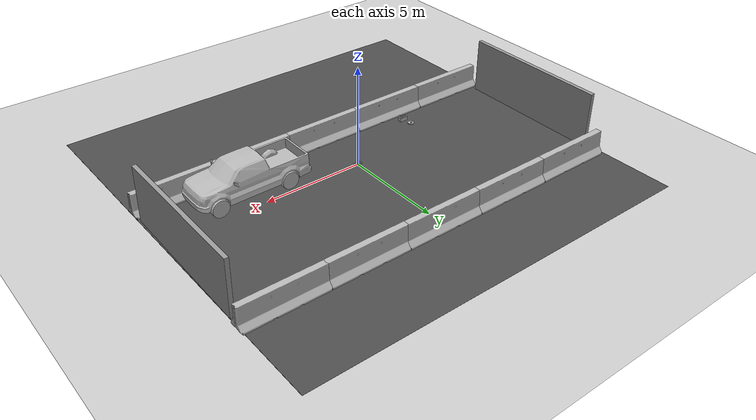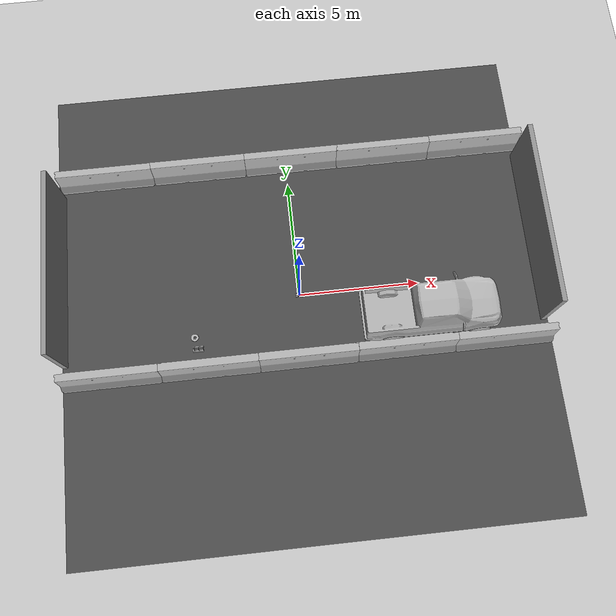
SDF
<sdf version="1.6">
 <world name="default">
  <light name="sun" type="directional">
   <pose>0 0 10 0 -0 0</pose>
   <diffuse>0.8 0.8 0.8 1</diffuse>
   <specular>0.2 0.2 0.2 1</specular>
   <attenuation>
    <range>1000</range>
    <constant>0.9</constant>
    <linear>0.01</linear>
    <quadratic>0.001</quadratic>
   </attenuation>
   <direction>-0.5 0.1 -0.9</direction>
  </light>
  <model name="ground_plane">
   <static>1</static>
   <link name="link">
    <collision name="collision">
     <geometry><plane><normal>0 0 1</normal><size>100 100</size></plane></geometry>
     <surface><friction><ode><mu>100</mu><mu2>50</mu2></ode></friction></surface>
    </collision>
    <visual name="visual">
     <transparency>1</transparency>
     <cast_shadows>0</cast_shadows>
     <geometry><plane><normal>0 0 1</normal><size>100 100</size></plane></geometry>
     <material>
      <script><uri>file://media/materials/scripts/gazebo.material</uri><name>Gazebo/Grey</name></script>
     </material>
    </visual>
   </link>
  </model>
  <gravity>0 0 -9.8</gravity>
  <magnetic_field>6e-06 2.3e-05 -4.2e-05</magnetic_field>
  <atmosphere type="adiabatic"/>
  <physics name="default_physics" default="0" type="ode">
   <max_step_size>0.001</max_step_size>
   <real_time_factor>1</real_time_factor>
   <real_time_update_rate>1000</real_time_update_rate>
  </physics>
  <scene><ambient>0.4 0.4 0.4 1</ambient><background>0.7 0.7 0.7 1</background><shadows>1</shadows></scene>
  <spherical_coordinates>
   <surface_model>EARTH_WGS84</surface_model>
   <latitude_deg>0</latitude_deg>
   <longitude_deg>0</longitude_deg>
   <elevation>0</elevation>
   <heading_deg>0</heading_deg>
  </spherical_coordinates>
  <model name="jersey_barrier">
   <static>1</static>
   <link name="link">
    <visual name="visual">
     <geometry><mesh><uri>model://jersey_barrier/meshes/jersey_barrier.dae</uri></mesh></geometry>
    </visual>
    <collision name="upright">
     <pose>0 0 0.5715 0 -0 0</pose>
     <geometry><box><size>4.06542 0.3063 1.143</size></box></geometry>
    </collision>
    <collision name="base">
     <pose>0 0 0.032258 0 -0 0</pose>
     <geometry><box><size>4.06542 0.8107 0.064516</size></box></geometry>
    </collision>
    <collision name="base2">
     <pose>0 0 0.1 0 -0 0</pose>
     <geometry><box><size>4.06542 0.65 0.1</size></box></geometry>
    </collision>
    <collision name="base3">
     <pose>0 0 0.2 0 -0 0</pose>
     <geometry><box><size>4.06542 0.5 0.1</size></box></geometry>
    </collision>
    <collision name="left-angle">
     <pose>0 -0.224 0.2401 0.9 -0 0</pose>
     <geometry><box><size>4.06542 0.5 0.064516</size></box></geometry>
    </collision>
    <collision name="right-angle">
     <pose>0 0.224 0.2401 -0.9 0 0</pose>
     <geometry><box><size>4.06542 0.5 0.064516</size></box></geometry>
    </collision>
   </link>
   <pose>-7.75098 5.99367 0 0 -0 0</pose>
  </model>
  <model name="jersey_barrier_0">
   <static>1</static>
   <link name="link">
    <visual name="visual">
     <geometry><mesh><uri>model://jersey_barrier/meshes/jersey_barrier.dae</uri></mesh></geometry>
    </visual>
    <collision name="upright">
     <pose>0 0 0.5715 0 -0 0</pose>
     <geometry><box><size>4.06542 0.3063 1.143</size></box></geometry>
    </collision>
    <collision name="base">
     <pose>0 0 0.032258 0 -0 0</pose>
     <geometry><box><size>4.06542 0.8107 0.064516</size></box></geometry>
    </collision>
    <collision name="base2">
     <pose>0 0 0.1 0 -0 0</pose>
     <geometry><box><size>4.06542 0.65 0.1</size></box></geometry>
    </collision>
    <collision name="base3">
     <pose>0 0 0.2 0 -0 0</pose>
     <geometry><box><size>4.06542 0.5 0.1</size></box></geometry>
    </collision>
    <collision name="left-angle">
     <pose>0 -0.224 0.2401 0.9 -0 0</pose>
     <geometry><box><size>4.06542 0.5 0.064516</size></box></geometry>
    </collision>
    <collision name="right-angle">
     <pose>0 0.224 0.2401 -0.9 0 0</pose>
     <geometry><box><size>4.06542 0.5 0.064516</size></box></geometry>
    </collision>
   </link>
   <pose>-3.75438 6.00591 0 0 -0 0</pose>
  </model>
  <model name="jersey_barrier_1">
   <static>1</static>
   <link name="link">
    <visual name="visual">
     <geometry><mesh><uri>model://jersey_barrier/meshes/jersey_barrier.dae</uri></mesh></geometry>
    </visual>
    <collision name="upright">
     <pose>0 0 0.5715 0 -0 0</pose>
     <geometry><box><size>4.06542 0.3063 1.143</size></box></geometry>
    </collision>
    <collision name="base">
     <pose>0 0 0.032258 0 -0 0</pose>
     <geometry><box><size>4.06542 0.8107 0.064516</size></box></geometry>
    </collision>
    <collision name="base2">
     <pose>0 0 0.1 0 -0 0</pose>
     <geometry><box><size>4.06542 0.65 0.1</size></box></geometry>
    </collision>
    <collision name="base3">
     <pose>0 0 0.2 0 -0 0</pose>
     <geometry><box><size>4.06542 0.5 0.1</size></box></geometry>
    </collision>
    <collision name="left-angle">
     <pose>0 -0.224 0.2401 0.9 -0 0</pose>
     <geometry><box><size>4.06542 0.5 0.064516</size></box></geometry>
    </collision>
    <collision name="right-angle">
     <pose>0 0.224 0.2401 -0.9 0 0</pose>
     <geometry><box><size>4.06542 0.5 0.064516</size></box></geometry>
    </collision>
   </link>
   <pose>0.248575 6.01011 0 0 -0 0</pose>
  </model>
  <model name="jersey_barrier_2">
   <static>1</static>
   <link name="link">
    <visual name="visual">
     <geometry><mesh><uri>model://jersey_barrier/meshes/jersey_barrier.dae</uri></mesh></geometry>
    </visual>
    <collision name="upright">
     <pose>0 0 0.5715 0 -0 0</pose>
     <geometry><box><size>4.06542 0.3063 1.143</size></box></geometry>
    </collision>
    <collision name="base">
     <pose>0 0 0.032258 0 -0 0</pose>
     <geometry><box><size>4.06542 0.8107 0.064516</size></box></geometry>
    </collision>
    <collision name="base2">
     <pose>0 0 0.1 0 -0 0</pose>
     <geometry><box><size>4.06542 0.65 0.1</size></box></geometry>
    </collision>
    <collision name="base3">
     <pose>0 0 0.2 0 -0 0</pose>
     <geometry><box><size>4.06542 0.5 0.1</size></box></geometry>
    </collision>
    <collision name="left-angle">
     <pose>0 -0.224 0.2401 0.9 -0 0</pose>
     <geometry><box><size>4.06542 0.5 0.064516</size></box></geometry>
    </collision>
    <collision name="right-angle">
     <pose>0 0.224 0.2401 -0.9 0 0</pose>
     <geometry><box><size>4.06542 0.5 0.064516</size></box></geometry>
    </collision>
   </link>
   <pose>4.20715 6.00684 0 0 -0 0</pose>
  </model>
  <model name="jersey_barrier_3">
   <static>1</static>
   <link name="link">
    <visual name="visual">
     <geometry><mesh><uri>model://jersey_barrier/meshes/jersey_barrier.dae</uri></mesh></geometry>
    </visual>
    <collision name="upright">
     <pose>0 0 0.5715 0 -0 0</pose>
     <geometry><box><size>4.06542 0.3063 1.143</size></box></geometry>
    </collision>
    <collision name="base">
     <pose>0 0 0.032258 0 -0 0</pose>
     <geometry><box><size>4.06542 0.8107 0.064516</size></box></geometry>
    </collision>
    <collision name="base2">
     <pose>0 0 0.1 0 -0 0</pose>
     <geometry><box><size>4.06542 0.65 0.1</size></box></geometry>
    </collision>
    <collision name="base3">
     <pose>0 0 0.2 0 -0 0</pose>
     <geometry><box><size>4.06542 0.5 0.1</size></box></geometry>
    </collision>
    <collision name="left-angle">
     <pose>0 -0.224 0.2401 0.9 -0 0</pose>
     <geometry><box><size>4.06542 0.5 0.064516</size></box></geometry>
    </collision>
    <collision name="right-angle">
     <pose>0 0.224 0.2401 -0.9 0 0</pose>
     <geometry><box><size>4.06542 0.5 0.064516</size></box></geometry>
    </collision>
   </link>
   <pose>8.19136 6.01867 0 0 -0 0</pose>
  </model>
  <model name="jersey_barrier_4">
   <static>1</static>
   <link name="link">
    <visual name="visual">
     <geometry><mesh><uri>model://jersey_barrier/meshes/jersey_barrier.dae</uri></mesh></geometry>
    </visual>
    <collision name="upright">
     <pose>0 0 0.5715 0 -0 0</pose>
     <geometry><box><size>4.06542 0.3063 1.143</size></box></geometry>
    </collision>
    <collision name="base">
     <pose>0 0 0.032258 0 -0 0</pose>
     <geometry><box><size>4.06542 0.8107 0.064516</size></box></geometry>
    </collision>
    <collision name="base2">
     <pose>0 0 0.1 0 -0 0</pose>
     <geometry><box><size>4.06542 0.65 0.1</size></box></geometry>
    </collision>
    <collision name="base3">
     <pose>0 0 0.2 0 -0 0</pose>
     <geometry><box><size>4.06542 0.5 0.1</size></box></geometry>
    </collision>
    <collision name="left-angle">
     <pose>0 -0.224 0.2401 0.9 -0 0</pose>
     <geometry><box><size>4.06542 0.5 0.064516</size></box></geometry>
    </collision>
    <collision name="right-angle">
     <pose>0 0.224 0.2401 -0.9 0 0</pose>
     <geometry><box><size>4.06542 0.5 0.064516</size></box></geometry>
    </collision>
   </link>
   <pose>8.0964 -2.68116 0 0 -0 0</pose>
  </model>
  <model name="jersey_barrier_5">
   <static>1</static>
   <link name="link">
    <visual name="visual">
     <geometry><mesh><uri>model://jersey_barrier/meshes/jersey_barrier.dae</uri></mesh></geometry>
    </visual>
    <collision name="upright">
     <pose>0 0 0.5715 0 -0 0</pose>
     <geometry><box><size>4.06542 0.3063 1.143</size></box></geometry>
    </collision>
    <collision name="base">
     <pose>0 0 0.032258 0 -0 0</pose>
     <geometry><box><size>4.06542 0.8107 0.064516</size></box></geometry>
    </collision>
    <collision name="base2">
     <pose>0 0 0.1 0 -0 0</pose>
     <geometry><box><size>4.06542 0.65 0.1</size></box></geometry>
    </collision>
    <collision name="base3">
     <pose>0 0 0.2 0 -0 0</pose>
     <geometry><box><size>4.06542 0.5 0.1</size></box></geometry>
    </collision>
    <collision name="left-angle">
     <pose>0 -0.224 0.2401 0.9 -0 0</pose>
     <geometry><box><size>4.06542 0.5 0.064516</size></box></geometry>
    </collision>
    <collision name="right-angle">
     <pose>0 0.224 0.2401 -0.9 0 0</pose>
     <geometry><box><size>4.06542 0.5 0.064516</size></box></geometry>
    </collision>
   </link>
   <pose>4.09361 -2.67385 0 0 -0 0</pose>
  </model>
  <model name="jersey_barrier_6">
   <static>1</static>
   <link name="link">
    <visual name="visual">
     <geometry><mesh><uri>model://jersey_barrier/meshes/jersey_barrier.dae</uri></mesh></geometry>
    </visual>
    <collision name="upright">
     <pose>0 0 0.5715 0 -0 0</pose>
     <geometry><box><size>4.06542 0.3063 1.143</size></box></geometry>
    </collision>
    <collision name="base">
     <pose>0 0 0.032258 0 -0 0</pose>
     <geometry><box><size>4.06542 0.8107 0.064516</size></box></geometry>
    </collision>
    <collision name="base2">
     <pose>0 0 0.1 0 -0 0</pose>
     <geometry><box><size>4.06542 0.65 0.1</size></box></geometry>
    </collision>
    <collision name="base3">
     <pose>0 0 0.2 0 -0 0</pose>
     <geometry><box><size>4.06542 0.5 0.1</size></box></geometry>
    </collision>
    <collision name="left-angle">
     <pose>0 -0.224 0.2401 0.9 -0 0</pose>
     <geometry><box><size>4.06542 0.5 0.064516</size></box></geometry>
    </collision>
    <collision name="right-angle">
     <pose>0 0.224 0.2401 -0.9 0 0</pose>
     <geometry><box><size>4.06542 0.5 0.064516</size></box></geometry>
    </collision>
   </link>
   <pose>0.086719 -2.68949 0 0 -0 0</pose>
  </model>
  <model name="jersey_barrier_7">
   <static>1</static>
   <link name="link">
    <visual name="visual">
     <geometry><mesh><uri>model://jersey_barrier/meshes/jersey_barrier.dae</uri></mesh></geometry>
    </visual>
    <collision name="upright">
     <pose>0 0 0.5715 0 -0 0</pose>
     <geometry><box><size>4.06542 0.3063 1.143</size></box></geometry>
    </collision>
    <collision name="base">
     <pose>0 0 0.032258 0 -0 0</pose>
     <geometry><box><size>4.06542 0.8107 0.064516</size></box></geometry>
    </collision>
    <collision name="base2">
     <pose>0 0 0.1 0 -0 0</pose>
     <geometry><box><size>4.06542 0.65 0.1</size></box></geometry>
    </collision>
    <collision name="base3">
     <pose>0 0 0.2 0 -0 0</pose>
     <geometry><box><size>4.06542 0.5 0.1</size></box></geometry>
    </collision>
    <collision name="left-angle">
     <pose>0 -0.224 0.2401 0.9 -0 0</pose>
     <geometry><box><size>4.06542 0.5 0.064516</size></box></geometry>
    </collision>
    <collision name="right-angle">
     <pose>0 0.224 0.2401 -0.9 0 0</pose>
     <geometry><box><size>4.06542 0.5 0.064516</size></box></geometry>
    </collision>
   </link>
   <pose>-3.89688 -2.69474 0 0 -0 0</pose>
  </model>
  <model name="jersey_barrier_8">
   <static>1</static>
   <link name="link">
    <visual name="visual">
     <geometry><mesh><uri>model://jersey_barrier/meshes/jersey_barrier.dae</uri></mesh></geometry>
    </visual>
    <collision name="upright">
     <pose>0 0 0.5715 0 -0 0</pose>
     <geometry><box><size>4.06542 0.3063 1.143</size></box></geometry>
    </collision>
    <collision name="base">
     <pose>0 0 0.032258 0 -0 0</pose>
     <geometry><box><size>4.06542 0.8107 0.064516</size></box></geometry>
    </collision>
    <collision name="base2">
     <pose>0 0 0.1 0 -0 0</pose>
     <geometry><box><size>4.06542 0.65 0.1</size></box></geometry>
    </collision>
    <collision name="base3">
     <pose>0 0 0.2 0 -0 0</pose>
     <geometry><box><size>4.06542 0.5 0.1</size></box></geometry>
    </collision>
    <collision name="left-angle">
     <pose>0 -0.224 0.2401 0.9 -0 0</pose>
     <geometry><box><size>4.06542 0.5 0.064516</size></box></geometry>
    </collision>
    <collision name="right-angle">
     <pose>0 0.224 0.2401 -0.9 0 0</pose>
     <geometry><box><size>4.06542 0.5 0.064516</size></box></geometry>
    </collision>
   </link>
   <pose>-7.89285 -2.70504 0 0 -0 0</pose>
  </model>
  <model name="cinder_block">
   <link name="link">
    <inertial>
     <pose>0 0 0.1016 0 -0 0</pose>
     <mass>5</mass>
     <inertia>
      <ixx>0.028705</ixx>
      <ixy>0</ixy>
      <iyy>0.073708</iyy>
      <ixz>0</ixz>
      <iyz>0</iyz>
      <izz>0.06908</izz>
     </inertia>
    </inertial>
    <visual name="visual">
     <geometry><mesh><uri>model://cinder_block/meshes/cinder_block.dae</uri></mesh></geometry>
    </visual>
    <collision name="left">
     <pose>0 -0.08465 0.1016 0 -0 0</pose>
     <geometry><box><size>0.43495 0.0339 0.2032</size></box></geometry>
     <surface>
      <contact><ode><max_vel>0.1</max_vel><min_depth>0.001</min_depth></ode></contact>
      <friction><ode><mu>1</mu><mu2>1</mu2></ode></friction>
     </surface>
    </collision>
    <collision name="right">
     <pose>0 0.08465 0.1016 0 -0 0</pose>
     <geometry><box><size>0.43495 0.0339 0.2032</size></box></geometry>
     <surface>
      <contact><ode><max_vel>0.1</max_vel><min_depth>0.001</min_depth></ode></contact>
      <friction><ode><mu>1</mu><mu2>1</mu2></ode></friction>
     </surface>
    </collision>
    <collision name="front">
     <pose>0.18625 0 0.1016 0 -0 0</pose>
     <geometry><box><size>0.0339 0.1354 0.203</size></box></geometry>
     <surface>
      <contact><ode><max_vel>0.1</max_vel><min_depth>0.001</min_depth></ode></contact>
      <friction><ode><mu>1</mu><mu2>1</mu2></ode></friction>
     </surface>
    </collision>
    <collision name="middle">
     <pose>0 0 0.1016 0 -0 0</pose>
     <geometry><box><size>0.0339 0.1354 0.203</size></box></geometry>
     <surface>
      <contact><ode><max_vel>0.1</max_vel><min_depth>0.001</min_depth></ode></contact>
      <friction><ode><mu>1</mu><mu2>1</mu2></ode></friction>
     </surface>
    </collision>
    <collision name="back">
     <pose>-0.18625 0 0.1016 0 -0 0</pose>
     <geometry><box><size>0.0339 0.1354 0.203</size></box></geometry>
     <surface>
      <contact><ode><max_vel>0.1</max_vel><min_depth>0.001</min_depth></ode></contact>
      <friction><ode><mu>1</mu><mu2>1</mu2></ode></friction>
     </surface>
    </collision>
   </link>
   <pose>-4.35231 -1.88557 -0.000338 -2e-06 -0.001352 -4e-06</pose>
  </model>
  <model name="disk_part">
   <link name="link">
    <inertial>
     <pose>0 0 0.02895 0 -0 0</pose>
     <mass>0.5</mass>
     <inertia>
      <ixx>0.00321218</ixx>
      <ixy>0</ixy>
      <ixz>0</ixz>
      <iyy>0.00321218</iyy>
      <iyz>0</iyz>
      <izz>0.00614499</izz>
     </inertia>
    </inertial>
    <collision name="collision">
     <pose>0 0 0.02895 0 -0 0</pose>
     <geometry><cylinder><length>0.0579</length><radius>0.15678</radius></cylinder></geometry>
    </collision>
    <visual name="visual">
     <geometry><mesh><uri>model://disk_part/meshes/disk.dae</uri></mesh></geometry>
     <material>
      <script>
       <uri>model://arm_part/materials/scripts</uri>
       <uri>model://arm_part/materials/textures</uri>
       <name>ArmPart/Diffuse</name>
      </script>
     </material>
    </visual>
   </link>
   <pose>-4.47199 -1.38375 -3e-06 -2.1e-05 -2.1e-05 -2.2e-05</pose>
  </model>
  <model name="pickup">
   <static>1</static>
   <link name="link">
    <collision name="collision">
     <pose>0 0 0 0 0 -1.5708</pose>
     <geometry><mesh><uri>model://pickup/meshes/pickup.dae</uri></mesh></geometry>
    </collision>
    <visual name="visual">
     <pose>0 0 0 0 0 -1.5708</pose>
     <geometry><mesh><uri>model://pickup/meshes/pickup.dae</uri></mesh></geometry>
    </visual>
   </link>
   <pose>5.35397 -1.30436 0 0 -0 0</pose>
  </model>
  <model name="grey_wall">
   <static>1</static>
   <link name="link">
    <pose>0 0 1.4 0 -0 0</pose>
    <collision name="collision"><geometry><box><size>7.5 0.2 2.8</size></box></geometry></collision>
    <visual name="visual">
     <cast_shadows>0</cast_shadows>
     <geometry><box><size>7.5 0.2 2.8</size></box></geometry>
     <material>
      <script>
       <uri>model://grey_wall/materials/scripts</uri>
       <uri>model://grey_wall/materials/textures</uri>
       <name>vrc/grey_wall</name>
      </script>
     </material>
    </visual>
   </link>
   <pose>9.95585 1.645 0 0 0 -1.58125</pose>
  </model>
  <model name="grey_wall_clone">
   <static>1</static>
   <link name="link">
    <pose>0 0 1.4 0 -0 0</pose>
    <collision name="collision"><geometry><box><size>7.5 0.2 2.8</size></box></geometry></collision>
    <visual name="visual">
     <cast_shadows>0</cast_shadows>
     <geometry><box><size>7.5 0.2 2.8</size></box></geometry>
     <material>
      <script>
       <uri>model://grey_wall/materials/scripts</uri>
       <uri>model://grey_wall/materials/textures</uri>
       <name>vrc/grey_wall</name>
      </script>
     </material>
    </visual>
   </link>
   <pose>-9.74437 1.64538 0 0 0 -1.58125</pose>
  </model>
  <model name="udacity_bot">
   <link name="robot_footprint">
    <inertial>
     <pose>0.00098 0 0.000654 0 -0 0</pose>
     <mass>15.3</mass>
     <inertia>
      <ixx>0.100496</ixx>
      <ixy>0</ixy>
      <ixz>9.80392e-06</ixz>
      <iyy>0.103857</iyy>
      <iyz>0</iyz>
      <izz>0.103363</izz>
     </inertia>
    </inertial>
    <collision name="robot_footprint_fixed_joint_lump__collision_collision">
     <geometry><box><size>0.3 0.1 0.05</size></box></geometry>
    </collision>
    <collision name="robot_footprint_fixed_joint_lump__collision_collision_1">
     <pose>0.15 0 0 0 -0 0</pose>
     <geometry><box><size>0.025 0.025 0.025</size></box></geometry>
    </collision>
    <collision name="robot_footprint_fixed_joint_lump__collision_collision_2">
     <pose>0.075 0 0.05 0 -0 0</pose>
     <geometry><box><size>0.05 0.05 0.05</size></box></geometry>
    </collision>
    <collision name="robot_footprint_fixed_joint_lump__collision_collision_3">
     <pose>-0.075 0 0.05 0 -0 3.1414</pose>
     <geometry><box><size>0.05 0.05 0.05</size></box></geometry>
    </collision>
    <visual name="robot_footprint_fixed_joint_lump__chassis_visual_visual">
     <geometry><box><size>0.3 0.1 0.05</size></box></geometry>
    </visual>
    <visual name="robot_footprint_fixed_joint_lump__chassis_visual_visual_1">
     <pose>0.15 0 0 0 -0 0</pose>
     <geometry><box><size>0.025 0.025 0.025</size></box></geometry>
    </visual>
    <visual name="robot_footprint_fixed_joint_lump__chassis_visual_visual_2">
     <pose>0.075 0 0.05 0 -0 0</pose>
     <geometry>
      <mesh><scale>1 1 1</scale><uri>/home/robond/ws_moveit/src/slam_project/meshes/hokuyo.dae</uri></mesh>
     </geometry>
    </visual>
    <visual name="robot_footprint_fixed_joint_lump__chassis_visual_visual_3">
     <pose>-0.075 0 0.05 0 -0 3.1414</pose>
     <geometry>
      <mesh><scale>1 1 1</scale><uri>/home/robond/ws_moveit/src/slam_project/meshes/hokuyo.dae</uri></mesh>
     </geometry>
    </visual>
    <sensor name="camera1" type="depth">
     <always_on>1</always_on>
     <update_rate>20</update_rate>
     <visualize>1</visualize>
     <camera name="__default__">
      <horizontal_fov>1.047</horizontal_fov>
      <image><width>640</width><height>480</height><format>R8G8B8</format></image>
      <depth_camera><output>depths</output></depth_camera>
      <clip><near>0.1</near><far>20</far></clip>
     </camera>
     <plugin name="camera_controller" filename="libgazebo_ros_openni_kinect.so">
      <alwaysOn>true</alwaysOn>
      <updateRate>40</updateRate>
      <cameraName>camera</cameraName>
      <frameName>camera_rgbd_frame</frameName>
      <imageTopicName>rgb/image_raw</imageTopicName>
      <depthImageTopicName>depth/image_raw</depthImageTopicName>
      <pointCloudTopicName>depth/points</pointCloudTopicName>
      <cameraInfoTopicName>rgb/camera_info</cameraInfoTopicName>
      <depthImageCameraInfoTopicName>depth/camera_info</depthImageCameraInfoTopicName>
      <pointCloudCutoff>0.4</pointCloudCutoff>
      <hackBaseline>0.07</hackBaseline>
      <distortionK1>0.0</distortionK1>
      <distortionK2>0.0</distortionK2>
      <distortionK3>0.0</distortionK3>
      <distortionT1>0.0</distortionT1>
      <distortionT2>0.0</distortionT2>
      <CxPrime>0.0</CxPrime>
      <Cx>0.0</Cx>
      <Cy>0.0</Cy>
      <focalLength>0.0</focalLength>
      <robotNamespace>/</robotNamespace>
     </plugin>
     <pose>0.15 0 0 0 -0 0</pose>
    </sensor>
    <sensor name="head_hokuyo_sensor" type="ray">
     <visualize>0</visualize>
     <update_rate>20</update_rate>
     <ray>
      <scan>
       <horizontal>
        <samples>720</samples>
        <resolution>1</resolution>
        <min_angle>-1.5708</min_angle>
        <max_angle>1.5708</max_angle>
       </horizontal>
       <vertical><samples>1</samples><min_angle>0</min_angle><max_angle>0</max_angle></vertical>
      </scan>
      <range><min>0.1</min><max>30</max><resolution>0.01</resolution></range>
      <noise><type>gaussian</type><mean>0</mean><stddev>0.01</stddev></noise>
     </ray>
     <plugin name="gazebo_ros_head_hokuyo_controller" filename="libgazebo_ros_laser.so">
      <topicName>/udacity_bot/laser/scan</topicName>
      <frameName>hokuyo</frameName>
      <robotNamespace>/</robotNamespace>
     </plugin>
     <pose>0.075 0 0.05 0 -0 0</pose>
    </sensor>
    <sensor name="back_hokuyo_sensor" type="ray">
     <visualize>0</visualize>
     <update_rate>40</update_rate>
     <ray>
      <scan>
       <horizontal>
        <samples>2000</samples>
        <resolution>1</resolution>
        <min_angle>-3.14</min_angle>
        <max_angle>3.14</max_angle>
       </horizontal>
       <vertical><samples>1</samples><min_angle>0</min_angle><max_angle>0</max_angle></vertical>
      </scan>
      <range><min>0.5</min><max>40</max><resolution>0.01</resolution></range>
      <noise><type>gaussian</type><mean>0</mean><stddev>0.01</stddev></noise>
     </ray>
     <plugin name="gazebo_ros_head_hokuyo_controller" filename="libgazebo_ros_laser.so">
      <topicName>/udacity_bot/laser/scan2</topicName>
      <frameName>hokuyo2</frameName>
      <robotNamespace>/</robotNamespace>
     </plugin>
     <pose>-0.075 0 0.05 0 -0 0</pose>
    </sensor>
   </link>
   <link name="left_wheel3">
    <pose>0.125 0.075 0 0 -0 0</pose>
    <inertial>
     <pose>0 0 0 -0 1.5707 1.5707</pose>
     <mass>5</mass>
     <inertia><ixx>0.1</ixx><ixy>0</ixy><ixz>0</ixz><iyy>0.1</iyy><iyz>0</iyz><izz>0.1</izz></inertia>
    </inertial>
    <collision name="left_wheel3_fixed_joint_lump__collision_collision">
     <pose>0 0 0 -0 1.5707 1.5707</pose>
     <geometry><cylinder><length>0.025</length><radius>0.049</radius></cylinder></geometry>
    </collision>
    <visual name="left_wheel3_fixed_joint_lump__chassis_visual_visual">
     <pose>0 0 0 -0 1.5707 1.5707</pose>
     <geometry><cylinder><length>0.025</length><radius>0.05</radius></cylinder></geometry>
    </visual>
   </link>
   <joint name="L3_wheel_hinge" type="revolute">
    <child>left_wheel3</child>
    <parent>robot_footprint</parent>
    <axis>
     <xyz>0 1 0</xyz>
     <limit><lower>-1e+16</lower><upper>1e+16</upper></limit>
     <dynamics>
      <damping>0</damping>
      <friction>0</friction>
      <spring_reference>0</spring_reference>
      <spring_stiffness>0</spring_stiffness>
     </dynamics>
     <use_parent_model_frame>1</use_parent_model_frame>
    </axis>
   </joint>
   <link name="left_wheel2">
    <pose>-0.125 0.075 0 0 -0 0</pose>
    <inertial>
     <pose>0 0 0 -0 1.5707 1.5707</pose>
     <mass>5</mass>
     <inertia><ixx>0.1</ixx><ixy>0</ixy><ixz>0</ixz><iyy>0.1</iyy><iyz>0</iyz><izz>0.1</izz></inertia>
    </inertial>
    <collision name="left_wheel2_fixed_joint_lump__collision_collision">
     <pose>0 0 0 -0 1.5707 1.5707</pose>
     <geometry><cylinder><length>0.025</length><radius>0.049</radius></cylinder></geometry>
    </collision>
    <visual name="left_wheel2_fixed_joint_lump__chassis_visual_visual">
     <pose>0 0 0 -0 1.5707 1.5707</pose>
     <geometry><cylinder><length>0.025</length><radius>0.05</radius></cylinder></geometry>
    </visual>
   </link>
   <joint name="L_wheel_hinge" type="revolute">
    <child>left_wheel2</child>
    <parent>robot_footprint</parent>
    <axis>
     <xyz>0 1 0</xyz>
     <limit><lower>-1e+16</lower><upper>1e+16</upper></limit>
     <dynamics>
      <damping>0</damping>
      <friction>0</friction>
      <spring_reference>0</spring_reference>
      <spring_stiffness>0</spring_stiffness>
     </dynamics>
     <use_parent_model_frame>1</use_parent_model_frame>
    </axis>
   </joint>
   <link name="right_wheel3">
    <pose>0.125 -0.075 0 0 -0 0</pose>
    <inertial>
     <pose>0 0 0 -0 1.5707 1.5707</pose>
     <mass>5</mass>
     <inertia><ixx>0.1</ixx><ixy>0</ixy><ixz>0</ixz><iyy>0.1</iyy><iyz>0</iyz><izz>0.1</izz></inertia>
    </inertial>
    <collision name="right_wheel3_fixed_joint_lump__collision_collision">
     <pose>0 0 0 -0 1.5707 1.5707</pose>
     <geometry><cylinder><length>0.025</length><radius>0.049</radius></cylinder></geometry>
    </collision>
    <visual name="right_wheel3_fixed_joint_lump__chassis_visual_visual">
     <pose>0 0 0 -0 1.5707 1.5707</pose>
     <geometry><cylinder><length>0.025</length><radius>0.05</radius></cylinder></geometry>
    </visual>
   </link>
   <joint name="R3_wheel_hinge" type="revolute">
    <child>right_wheel3</child>
    <parent>robot_footprint</parent>
    <axis>
     <xyz>0 1 0</xyz>
     <limit><lower>-1e+16</lower><upper>1e+16</upper></limit>
     <dynamics>
      <damping>0</damping>
      <friction>0</friction>
      <spring_reference>0</spring_reference>
      <spring_stiffness>0</spring_stiffness>
     </dynamics>
     <use_parent_model_frame>1</use_parent_model_frame>
    </axis>
   </joint>
   <link name="right_wheel2">
    <pose>-0.125 -0.075 0 0 -0 0</pose>
    <inertial>
     <pose>0 0 0 -0 1.5707 1.5707</pose>
     <mass>5</mass>
     <inertia><ixx>0.1</ixx><ixy>0</ixy><ixz>0</ixz><iyy>0.1</iyy><iyz>0</iyz><izz>0.1</izz></inertia>
    </inertial>
    <collision name="right_wheel2_fixed_joint_lump__collision_collision">
     <pose>0 0 0 -0 1.5707 1.5707</pose>
     <geometry><cylinder><length>0.025</length><radius>0.049</radius></cylinder></geometry>
    </collision>
    <visual name="right_wheel2_fixed_joint_lump__chassis_visual_visual">
     <pose>0 0 0 -0 1.5707 1.5707</pose>
     <geometry><cylinder><length>0.025</length><radius>0.05</radius></cylinder></geometry>
    </visual>
   </link>
   <joint name="R_wheel_hinge" type="revolute">
    <child>right_wheel2</child>
    <parent>robot_footprint</parent>
    <axis>
     <xyz>0 1 0</xyz>
     <limit><lower>-1e+16</lower><upper>1e+16</upper></limit>
     <dynamics>
      <damping>0</damping>
      <friction>0</friction>
      <spring_reference>0</spring_reference>
      <spring_stiffness>0</spring_stiffness>
     </dynamics>
     <use_parent_model_frame>1</use_parent_model_frame>
    </axis>
   </joint>
   <link name="left_wheel">
    <pose>0 0.075 0 0 -0 0</pose>
    <inertial>
     <pose>0 0 0 -0 1.5707 1.5707</pose>
     <mass>5</mass>
     <inertia><ixx>0.1</ixx><ixy>0</ixy><ixz>0</ixz><iyy>0.1</iyy><iyz>0</iyz><izz>0.1</izz></inertia>
    </inertial>
    <collision name="left_wheel_fixed_joint_lump__collision_collision">
     <pose>0 0 0 -0 1.5707 1.5707</pose>
     <geometry><cylinder><length>0.025</length><radius>0.05</radius></cylinder></geometry>
    </collision>
    <visual name="left_wheel_fixed_joint_lump__chassis_visual_visual">
     <pose>0 0 0 -0 1.5707 1.5707</pose>
     <geometry><cylinder><length>0.025</length><radius>0.05</radius></cylinder></geometry>
    </visual>
   </link>
   <joint name="left_wheel_hinge" type="revolute">
    <child>left_wheel</child>
    <parent>robot_footprint</parent>
    <axis>
     <xyz>0 1 0</xyz>
     <limit><lower>-1e+16</lower><upper>1e+16</upper></limit>
     <dynamics>
      <damping>1</damping>
      <friction>1</friction>
      <spring_reference>0</spring_reference>
      <spring_stiffness>0</spring_stiffness>
     </dynamics>
     <use_parent_model_frame>1</use_parent_model_frame>
    </axis>
   </joint>
   <link name="right_wheel">
    <pose>0 -0.075 0 0 -0 0</pose>
    <inertial>
     <pose>0 0 0 -0 1.5707 1.5707</pose>
     <mass>5</mass>
     <inertia><ixx>0.1</ixx><ixy>0</ixy><ixz>0</ixz><iyy>0.1</iyy><iyz>0</iyz><izz>0.1</izz></inertia>
    </inertial>
    <collision name="right_wheel_fixed_joint_lump__collision_collision">
     <pose>0 0 0 -0 1.5707 1.5707</pose>
     <geometry><cylinder><length>0.025</length><radius>0.05</radius></cylinder></geometry>
    </collision>
    <visual name="right_wheel_fixed_joint_lump__chassis_visual_visual">
     <pose>0 0 0 -0 1.5707 1.5707</pose>
     <geometry><cylinder><length>0.025</length><radius>0.05</radius></cylinder></geometry>
    </visual>
   </link>
   <joint name="right_wheel_hinge" type="revolute">
    <child>right_wheel</child>
    <parent>robot_footprint</parent>
    <axis>
     <xyz>0 1 0</xyz>
     <limit><lower>-1e+16</lower><upper>1e+16</upper></limit>
     <dynamics>
      <damping>1</damping>
      <friction>1</friction>
      <spring_reference>0</spring_reference>
      <spring_stiffness>0</spring_stiffness>
     </dynamics>
     <use_parent_model_frame>1</use_parent_model_frame>
    </axis>
   </joint>
   <static>0</static>
   <plugin name="differential_drive_controller" filename="libgazebo_ros_diff_drive.so">
    <legacyMode>false</legacyMode>
    <alwaysOn>true</alwaysOn>
    <updateRate>10</updateRate>
    <leftJoint>left_wheel_hinge</leftJoint>
    <rightJoint>right_wheel_hinge</rightJoint>
    <wheelSeparation>0.2</wheelSeparation>
    <wheelDiameter>0.1</wheelDiameter>
    <torque>10</torque>
    <commandTopic>/teleop/cmd_vel</commandTopic>
    <odometryTopic>odom</odometryTopic>
    <odometryFrame>odom</odometryFrame>
    <robotBaseFrame>robot_footprint</robotBaseFrame>
    <robotNamespace>/</robotNamespace>
   </plugin>
   <pose>0.000393 0.000546 0.05 -1.9e-05 0.007819 -0.001362</pose>
  </model>
  <model name="asphalt_plane">
   <link name="link">
    <inertial>
     <mass>1</mass>
     <inertia><ixx>1</ixx><ixy>0</ixy><ixz>0</ixz><iyy>1</iyy><iyz>0</iyz><izz>1</izz></inertia>
    </inertial>
    <visual name="visual">
     <cast_shadows>0</cast_shadows>
     <geometry><box><size>20 20 0.01</size></box></geometry>
     <material>
      <script>
       <uri>model://asphalt_plane/materials/scripts</uri>
       <uri>model://asphalt_plane/materials/textures</uri>
       <name>vrc/asphalt</name>
      </script>
      <shader type="pixel"><normal_map>__default__</normal_map></shader>
      <ambient>0.5 0.5 0.5 1</ambient>
      <diffuse>0.5 0.5 0.5 1</diffuse>
      <specular>0.2 0.2 0.2 1</specular>
      <emissive>0 0 0 1</emissive>
     </material>
    </visual>
    <collision name="collision">
     <geometry><box><size>20 20 0.01</size></box></geometry>
     <surface>
      <friction>
       <ode><mu>1</mu><mu2>1</mu2><fdir1>0 0 0</fdir1><slip1>0</slip1><slip2>0</slip2></ode>
       <torsional>
        <coefficient>1</coefficient>
        <patch_radius>0</patch_radius>
        <surface_radius>0</surface_radius>
        <use_patch_radius>1</use_patch_radius>
        <ode><slip>0</slip></ode>
       </torsional>
      </friction>
      <bounce><restitution_coefficient>0</restitution_coefficient><threshold>1e+06</threshold></bounce>
      <contact>
       <collide_without_contact>0</collide_without_contact>
       <collide_without_contact_bitmask>1</collide_without_contact_bitmask>
       <collide_bitmask>1</collide_bitmask>
       <ode>
        <soft_cfm>0</soft_cfm>
        <soft_erp>0.2</soft_erp>
        <kp>1e+13</kp>
        <kd>1</kd>
        <max_vel>0.01</max_vel>
        <min_depth>0</min_depth>
       </ode>
       <bullet>
        <split_impulse>1</split_impulse>
        <split_impulse_penetration_threshold>-0.01</split_impulse_penetration_threshold>
        <soft_cfm>0</soft_cfm>
        <soft_erp>0.2</soft_erp>
        <kp>1e+13</kp>
        <kd>1</kd>
       </bullet>
      </contact>
     </surface>
    </collision>
   </link>
   <static>1</static>
   <pose>0.099342 0.011626 0 0 -0 0</pose>
  </model>
 </world>
</sdf>
